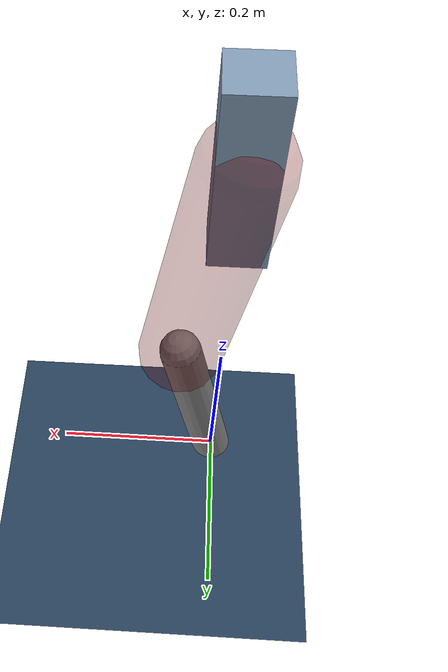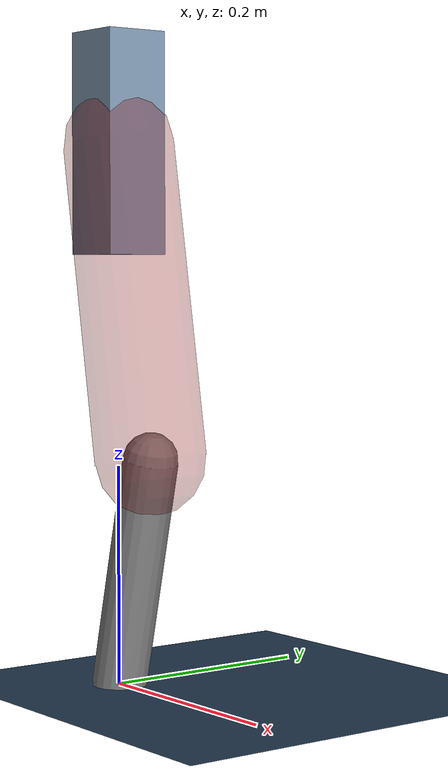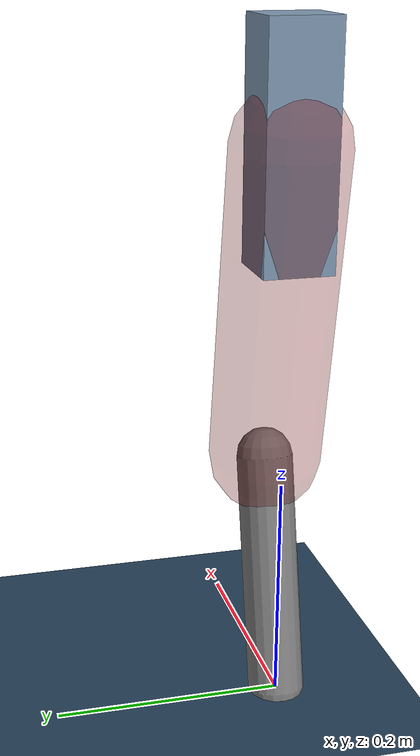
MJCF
<mujoco model="Hopper2D">
	<compiler inertiafromgeom="true" angle="radian" />
	<option timestep="0.001" integrator="implicit" cone="elliptic" solver="Newton" tolerance="1e-10" />

	<default>
		<geom contype="1" conaffinity="1" condim="3" friction="2 0.005 0.0001" solref="0.005 1" />
		<joint limited="true" damping="0.1" />
	</default>

	<asset>
		<texture name="skybox" type="skybox" builtin="gradient" rgb1=".4 .6 .8" rgb2="0 0 0" width="800" height="800" />
		<texture name="grid" type="2d" builtin="checker" rgb1=".1 .2 .3" rgb2=".2 .3 .4" width="300" height="300" mark="edge" markrgb=".2 .3 .4" />
		<material name="ground" texture="grid" texrepeat="1 1" texuniform="true" reflectance="0.1" />
		<material name="leg" rgba="0.5 0.6 0.7 1" />
	</asset>

	<worldbody>

		<geom name="floor" type="plane" size="5 5 0.25" material="ground" />

		<light directional="false" diffuse="0.8 0.8 0.8" specular="0.3 0.3 0.3" pos="0 0 2" dir="0 0 -1" />
		<light mode="targetbodycom" target="base" directional="false" diffuse="0.8 0.8 0.8" specular="0.3 0.3 0.3" pos="0 0 2" dir="0 0 -1" />

		<camera name="fixed" pos="0 -2 1" xyaxes="1 0 0 0 0 1" />
		<camera name="tracking" mode="trackcom" pos="0 -3 1" />

		<body name="root" pos="0 0 0.4929918835035072">
			<joint name="slide_x" type="slide" axis="1 0 0" range="-100 100" />
			<joint name="slide_z" type="slide" axis="0 0 1" range="0 10" />

			<body name="base" pos="0 0 0">
				<geom name="torso" type="box" size="0.03 0.03 0.1" mass="2.498" material="leg" />

				<body name="link1" pos="0 0 0" euler="0 1.39827296832856 0">
					<joint type="hinge" axis="0 -1 0" pos="0 0 0" name="hinge1" limited="true" range="-3.14 3.14" stiffness="0" damping="0.1" />
					<geom name="thigh" type="capsule" fromto="0 0 0 0.28754739806747165 0 0" size="0.05" rgba="0.5 0 0 0.3" mass="0.9552779747821735" />

					<body name="link2" pos="0.28754739806747165 0 0" euler="0 0.4036982013031369 0">
						<joint type="hinge" axis="0 -1 0" pos="0 0 0" name="hinge2" limited="true" range="-3.14 3.14" stiffness="0" damping="0.1" />
						<geom name="shank" type="capsule" fromto="0 0 0 0.2154444854360355 0 0" size="0.025" mass="0.4138555883488284" />

					</body>
				</body>
			</body>
		</body>
	</worldbody>

	<actuator>
		<motor name="torque1" joint="hinge1" ctrlrange="-46.924392353892344 46.924392353892344" ctrllimited="true" gear="1" />
		<motor name="torque2" joint="hinge2" ctrlrange="-59.11589677813152 59.11589677813152" ctrllimited="true" gear="1" />
	</actuator>
</mujoco>
